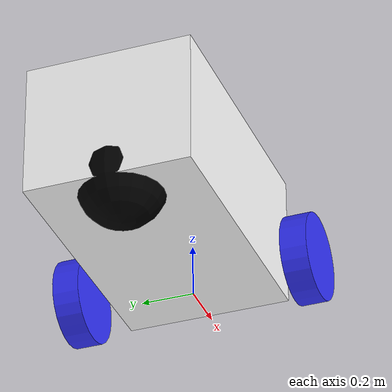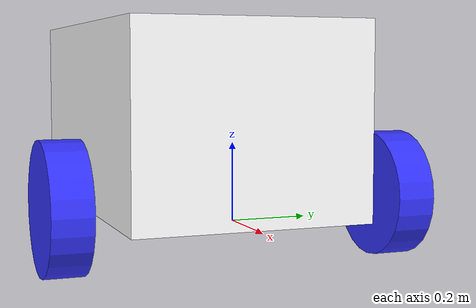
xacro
<?xml version="1.0"?>
<robot xmlns:xacro="http://www.ros.org/wiki/xacro"  name="robot">
	<xacro:include filename="robot_core.xacro" />

</robot>

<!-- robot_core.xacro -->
<robot xmlns:xacro="http://www.ros.org/wiki/xacro">

<material name="white">
    <color rgba="1 1 1 1"/>
</material>

<material name="orange">
    <color rgba="1 0.3 0.1 1"/>
</material>

<material name="blue">
    <color rgba="0.2 0.2 1 1"/>
</material>

<material name="black">
    <color rgba="0 0 0 1"/>
</material>

<xacro:include filename="inertial_macros.xacro" />

<xacro:property name="base_width" value="0.62" />
<xacro:property name="base_length" value="1.02" />
<xacro:property name="base_height" value="0.51" />
<xacro:property name="wheel_radius" value="0.165" />
<xacro:property name="wheel_width" value="0.1" />
<xacro:property name="wheel_yoff" value="0.13"/>
<xacro:property name="wheel_zoff" value="0.054"/>

<link name="base_link">
</link>

  <joint name="base_footprint_joint" type="fixed">
    <parent link="base_link"/>
    <child link="base_footprint"/>
    <origin xyz="0 0 0" rpy="0 0 0"/>
  </joint>

<link name="base_footprint">
</link>

<joint name="chassis_joint" type="fixed">
    <parent link="base_link"/>
    <child link="chassis"/>
    <origin xyz="-0.85 0 0"/>
</joint>

<link name="chassis">
    <visual>
        <origin xyz="${base_length/2} 0 ${base_height/2}" rpy="0 0 0"/>
        <geometry>
            <box size="${base_length} ${base_width} ${base_height}" />
        </geometry>
        <material name="white"/>
    </visual>

    <collision>
        <origin xyz="${base_length/2} 0 ${base_height/2}" rpy="0 0 0"/>
        <geometry>
            <box size="${base_length} ${base_width} ${base_height}" />
        </geometry>
    </collision>

	<xacro:inertial_box mass="0.5" x="${base_length}" y="${base_width}" z="${base_height}">
        <origin xyz="${base_length/2} 0 ${base_height/2}" rpy="0 0 0"/>
	</xacro:inertial_box>
</link>
<gazebo reference="chassis">
    <material>Gazebo/White</material>
</gazebo>

<!-- LEFT WHEEL -->

<joint name="left_wheel_joint" type="continuous">
    <parent link="base_link"/>
    <child link="left_wheel"/>
    <origin xyz="0 ${base_width/2+wheel_yoff} ${wheel_zoff}" rpy="-${pi/2} 0 0"/>
    <axis xyz="0 0 1"/>
</joint>

<link name="left_wheel">
    <visual>
        <geometry>
            <cylinder length="${wheel_width}" radius="${wheel_radius}" />
        </geometry>
        <material name="blue"/>
    </visual>

    <collision>
        <geometry>
            <cylinder length="${wheel_width}" radius="${wheel_radius}" />
        </geometry>
    </collision>

    <xacro:inertial_cylinder mass="0.1" length="${wheel_width}" radius="${wheel_radius}">
        <origin xyz="0 0 0" rpy="0 0 0"/>
    </xacro:inertial_cylinder>
</link>
<gazebo reference="left_wheel">
    <material>Gazebo/Blue</material>
</gazebo>

<!-- RIGHT WHEEL -->

<joint name="right_wheel_joint" type="continuous">
    <parent link="base_link"/>
    <child link="right_wheel"/>
    <origin xyz="0 ${-(base_width/2+wheel_yoff)} ${wheel_zoff}" rpy="${pi/2} 0 0"/>
    <axis xyz="0 0 -1"/>
</joint>

<link name="right_wheel">
    <visual>
        <geometry>
            <cylinder length="${wheel_width}" radius="${wheel_radius}" />
        </geometry>
        <material name="blue"/>
    </visual>

    <collision>
        <geometry>
            <cylinder length="${wheel_width}" radius="${wheel_radius}" />
        </geometry>
    </collision>

        <xacro:inertial_cylinder mass="0.1" length="${wheel_width}" radius="${wheel_radius}">
        <origin xyz="0 0 0" rpy="0 0 0"/>
    </xacro:inertial_cylinder>
</link>
<gazebo reference="right_wheel">
    <material>Gazebo/Blue</material>
</gazebo>

<!-- CASTER WHEEL -->

<joint name="caster_wheel_joint" type="fixed">
    <parent link="chassis"/>
    <child link="caster_wheel"/>
    <origin xyz="0.15 0 ${wheel_zoff}" rpy="0 0 0"/>
</joint>

<link name="caster_wheel">
    <visual>
        <geometry>
            <sphere radius="${wheel_radius}" />
        </geometry>
        <material name="black"/>
    </visual>

    <collision>
        <geometry>
            <sphere radius="${wheel_radius}" />
        </geometry>
    </collision>

    <xacro:inertial_sphere mass="0.1" radius="${wheel_radius}">
        <origin xyz="0 0 0" rpy="0 0 0"/>
    </xacro:inertial_sphere>
</link>
<gazebo reference="caster_wheel">
    <material>Gazebo/Black</material>
    <mu1 value="0.001"/>
    <mu2 value="0.001"/>
</gazebo>

</robot>
